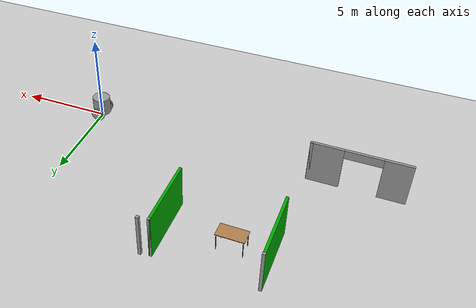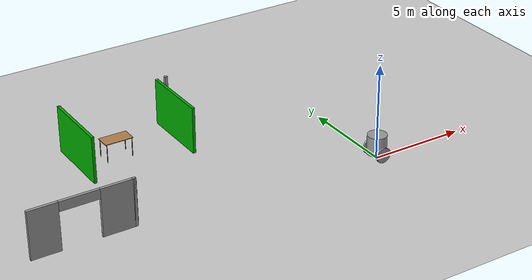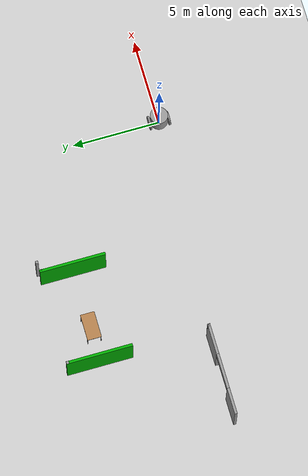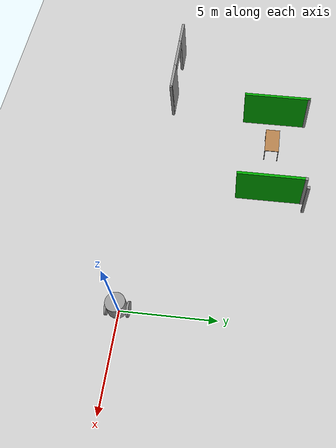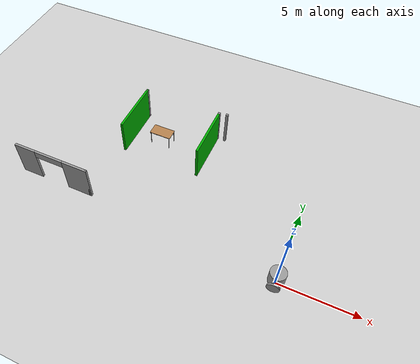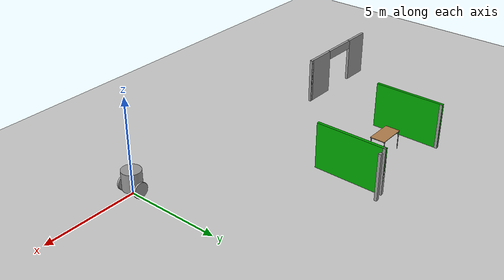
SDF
<sdf version="1.6">
 <world name="default">
  <model name="ground_plane">
   <static>1</static>
   <link name="link">
    <collision name="collision">
     <geometry><plane><normal>0 0 1</normal><size>100 100</size></plane></geometry>
     <surface><friction><ode><mu>100</mu><mu2>50</mu2></ode></friction></surface>
    </collision>
    <visual name="visual">
     <cast_shadows>0</cast_shadows>
     <geometry><plane><normal>0 0 1</normal><size>100 100</size></plane></geometry>
     <material>
      <script><uri>file://media/materials/scripts/gazebo.material</uri><name>Gazebo/Grey</name></script>
     </material>
    </visual>
   </link>
  </model>
  <model name="robot">
   <link name="link_1">
    <inertial>
     <mass>1</mass>
     <inertia><ixx>0.145833</ixx><ixy>0</ixy><ixz>0</ixz><iyy>0.145833</iyy><iyz>0</iyz><izz>0.125</izz></inertia>
    </inertial>
    <visual name="visual">
     <pose>0 0 0.4 0 -0 0</pose>
     <geometry><cylinder><radius>0.5</radius><length>1</length></cylinder></geometry>
     <material>
      <lighting>1</lighting>
      <script><uri>file://media/materials/scripts/gazebo.material</uri><name>Gazebo/Grey</name></script>
      <shader type="pixel"><normal_map>__default__</normal_map></shader>
      <ambient>0.3 0.3 0.3 1</ambient>
      <diffuse>0.7 0.7 0.7 1</diffuse>
      <specular>0.01 0.01 0.01 1</specular>
      <emissive>0 0 0 1</emissive>
     </material>
    </visual>
    <collision name="collision">
     <pose>0 0 0.4 0 -0 0</pose>
     <geometry><cylinder><radius>0.5</radius><length>1</length></cylinder></geometry>
     <surface>
      <friction>
       <ode><mu>1</mu><mu2>1</mu2><fdir1>0 0 0</fdir1><slip1>0</slip1><slip2>0</slip2></ode>
       <torsional>
        <coefficient>1</coefficient>
        <patch_radius>0</patch_radius>
        <surface_radius>0</surface_radius>
        <use_patch_radius>1</use_patch_radius>
        <ode><slip>0</slip></ode>
       </torsional>
      </friction>
      <bounce><restitution_coefficient>0</restitution_coefficient><threshold>1e+06</threshold></bounce>
      <contact>
       <collide_without_contact>0</collide_without_contact>
       <collide_without_contact_bitmask>1</collide_without_contact_bitmask>
       <collide_bitmask>1</collide_bitmask>
       <ode>
        <soft_cfm>0</soft_cfm>
        <soft_erp>0.2</soft_erp>
        <kp>1e+13</kp>
        <kd>1</kd>
        <max_vel>0.01</max_vel>
        <min_depth>0</min_depth>
       </ode>
       <bullet>
        <split_impulse>1</split_impulse>
        <split_impulse_penetration_threshold>-0.01</split_impulse_penetration_threshold>
        <soft_cfm>0</soft_cfm>
        <soft_erp>0.2</soft_erp>
        <kp>1e+13</kp>
        <kd>1</kd>
       </bullet>
      </contact>
     </surface>
    </collision>
   </link>
   <link name="link_1_clone">
    <inertial>
     <mass>1</mass>
     <inertia><ixx>0.145833</ixx><ixy>0</ixy><ixz>0</ixz><iyy>0.145833</iyy><iyz>0</iyz><izz>0.125</izz></inertia>
    </inertial>
    <pose>0 -0.550039 0 1.5707 -0 0</pose>
    <visual name="visual">
     <geometry><cylinder><radius>0.4</radius><length>0.1</length></cylinder></geometry>
     <material>
      <lighting>1</lighting>
      <script><uri>file://media/materials/scripts/gazebo.material</uri><name>Gazebo/Grey</name></script>
      <shader type="pixel"><normal_map>__default__</normal_map></shader>
      <ambient>0.3 0.3 0.3 1</ambient>
      <diffuse>0.7 0.7 0.7 1</diffuse>
      <specular>0.01 0.01 0.01 1</specular>
      <emissive>0 0 0 1</emissive>
     </material>
    </visual>
    <collision name="collision">
     <geometry><cylinder><radius>0.4</radius><length>0.1</length></cylinder></geometry>
     <surface>
      <friction>
       <ode><mu>1</mu><mu2>1</mu2><fdir1>0 0 0</fdir1><slip1>0</slip1><slip2>0</slip2></ode>
       <torsional>
        <coefficient>1</coefficient>
        <patch_radius>0</patch_radius>
        <surface_radius>0</surface_radius>
        <use_patch_radius>1</use_patch_radius>
        <ode><slip>0</slip></ode>
       </torsional>
      </friction>
      <bounce><restitution_coefficient>0</restitution_coefficient><threshold>1e+06</threshold></bounce>
      <contact>
       <collide_without_contact>0</collide_without_contact>
       <collide_without_contact_bitmask>1</collide_without_contact_bitmask>
       <collide_bitmask>1</collide_bitmask>
       <ode>
        <soft_cfm>0</soft_cfm>
        <soft_erp>0.2</soft_erp>
        <kp>1e+13</kp>
        <kd>1</kd>
        <max_vel>0.01</max_vel>
        <min_depth>0</min_depth>
       </ode>
       <bullet>
        <split_impulse>1</split_impulse>
        <split_impulse_penetration_threshold>-0.01</split_impulse_penetration_threshold>
        <soft_cfm>0</soft_cfm>
        <soft_erp>0.2</soft_erp>
        <kp>1e+13</kp>
        <kd>1</kd>
       </bullet>
      </contact>
     </surface>
    </collision>
   </link>
   <link name="link_1_clone_clone">
    <inertial>
     <mass>1</mass>
     <inertia><ixx>0.145833</ixx><ixy>0</ixy><ixz>0</ixz><iyy>0.145833</iyy><iyz>0</iyz><izz>0.125</izz></inertia>
    </inertial>
    <pose>0 0.550039 0 1.5707 -0 0</pose>
    <visual name="visual">
     <geometry><cylinder><radius>0.4</radius><length>0.1</length></cylinder></geometry>
     <material>
      <lighting>1</lighting>
      <script><uri>file://media/materials/scripts/gazebo.material</uri><name>Gazebo/Grey</name></script>
      <shader type="pixel"><normal_map>__default__</normal_map></shader>
      <ambient>0.3 0.3 0.3 1</ambient>
      <diffuse>0.7 0.7 0.7 1</diffuse>
      <specular>0.01 0.01 0.01 1</specular>
      <emissive>0 0 0 1</emissive>
     </material>
    </visual>
    <collision name="collision">
     <geometry><cylinder><radius>0.4</radius><length>0.1</length></cylinder></geometry>
     <surface>
      <friction>
       <ode><mu>1</mu><mu2>1</mu2><fdir1>0 0 0</fdir1><slip1>0</slip1><slip2>0</slip2></ode>
       <torsional>
        <coefficient>1</coefficient>
        <patch_radius>0</patch_radius>
        <surface_radius>0</surface_radius>
        <use_patch_radius>1</use_patch_radius>
        <ode><slip>0</slip></ode>
       </torsional>
      </friction>
      <bounce><restitution_coefficient>0</restitution_coefficient><threshold>1e+06</threshold></bounce>
      <contact>
       <collide_without_contact>0</collide_without_contact>
       <collide_without_contact_bitmask>1</collide_without_contact_bitmask>
       <collide_bitmask>1</collide_bitmask>
       <ode>
        <soft_cfm>0</soft_cfm>
        <soft_erp>0.2</soft_erp>
        <kp>1e+13</kp>
        <kd>1</kd>
        <max_vel>0.01</max_vel>
        <min_depth>0</min_depth>
       </ode>
       <bullet>
        <split_impulse>1</split_impulse>
        <split_impulse_penetration_threshold>-0.01</split_impulse_penetration_threshold>
        <soft_cfm>0</soft_cfm>
        <soft_erp>0.2</soft_erp>
        <kp>1e+13</kp>
        <kd>1</kd>
       </bullet>
      </contact>
     </surface>
    </collision>
   </link>
   <joint name="link_1_JOINT_2" type="revolute">
    <parent>link_1</parent>
    <child>link_1_clone</child>
    <axis>
     <xyz>0 0 1</xyz>
     <use_parent_model_frame>0</use_parent_model_frame>
     <limit>
      <lower>-1.79769e+308</lower>
      <upper>1.79769e+308</upper>
      <effort>-1</effort>
      <velocity>-1</velocity>
     </limit>
     <dynamics>
      <spring_reference>0</spring_reference>
      <spring_stiffness>0</spring_stiffness>
      <damping>0</damping>
     </dynamics>
    </axis>
    <physics>
     <ode><limit><cfm>0</cfm><erp>0.2</erp></limit><suspension><cfm>0</cfm><erp>0.2</erp></suspension></ode>
    </physics>
   </joint>
   <joint name="link_1_JOINT_4" type="revolute">
    <parent>link_1</parent>
    <child>link_1_clone_clone</child>
    <axis>
     <xyz>0 0 1</xyz>
     <use_parent_model_frame>0</use_parent_model_frame>
     <limit>
      <lower>-1.79769e+308</lower>
      <upper>1.79769e+308</upper>
      <effort>-1</effort>
      <velocity>-1</velocity>
     </limit>
     <dynamics>
      <spring_reference>0</spring_reference>
      <spring_stiffness>0</spring_stiffness>
      <damping>0</damping>
     </dynamics>
    </axis>
    <physics>
     <ode><limit><cfm>0</cfm><erp>0.2</erp></limit><suspension><cfm>0</cfm><erp>0.2</erp></suspension></ode>
    </physics>
   </joint>
   <static>0</static>
   <pose>0 -0.000492 0.400005 0 -0 0</pose>
  </model>
  <model name="FloorPlan">
   <pose>0.30947 -3.19534 0 0 -0 0</pose>
   <link name="Wall_70">
    <collision name="Wall_70_Collision">
     <geometry><box><size>0.16 0.15 2.5</size></box></geometry>
     <pose>0 0 1.25 0 -0 0</pose>
    </collision>
    <visual name="Wall_70_Visual">
     <pose>0 0 1.25 0 -0 0</pose>
     <geometry><box><size>0.16 0.15 2.5</size></box></geometry>
     <material>
      <script><uri>file://media/materials/scripts/gazebo.material</uri><name>Gazebo/Grey</name></script>
      <ambient>1 1 1 1</ambient>
     </material>
     <meta><layer>0</layer></meta>
    </visual>
    <pose>-7.03882 12.1498 0 0 -0 0</pose>
   </link>
   <link name="Wall_85">
    <pose>-15.6324 4.0709 0 0 -0 0</pose>
    <visual name="Wall_85_Visual_0">
     <pose>-1.87867 0 1.25 0 -0 0</pose>
     <geometry><box><size>1.49266 0.15 2.5</size></box></geometry>
     <material>
      <script><uri>file://media/materials/scripts/gazebo.material</uri><name>Gazebo/Grey</name></script>
      <ambient>1 1 1 1</ambient>
     </material>
     <meta><layer>0</layer></meta>
    </visual>
    <collision name="Wall_85_Collision_0">
     <geometry><box><size>1.49266 0.15 2.5</size></box></geometry>
     <pose>-1.87867 0 1.25 0 -0 0</pose>
    </collision>
    <visual name="Wall_85_Visual_1">
     <pose>1.74633 0 1.25 0 -0 0</pose>
     <geometry><box><size>1.75734 0.15 2.5</size></box></geometry>
     <material>
      <script><uri>file://media/materials/scripts/gazebo.material</uri><name>Gazebo/Grey</name></script>
      <ambient>1 1 1 1</ambient>
     </material>
     <meta><layer>0</layer></meta>
    </visual>
    <collision name="Wall_85_Collision_1">
     <geometry><box><size>1.75734 0.15 2.5</size></box></geometry>
     <pose>1.74633 0 1.25 0 -0 0</pose>
    </collision>
    <visual name="Wall_85_Visual_2">
     <pose>-0.132345 0 2.25 0 -0 0</pose>
     <geometry><box><size>2 0.15 0.5</size></box></geometry>
     <material>
      <script><uri>file://media/materials/scripts/gazebo.material</uri><name>Gazebo/Grey</name></script>
      <ambient>1 1 1 1</ambient>
     </material>
     <meta><layer>0</layer></meta>
    </visual>
    <collision name="Wall_85_Collision_2">
     <geometry><box><size>2 0.15 0.5</size></box></geometry>
     <pose>-0.132345 0 2.25 0 -0 0</pose>
    </collision>
   </link>
   <link name="Wall_86">
    <collision name="Wall_86_Collision">
     <geometry><box><size>0.16 0.15 2.5</size></box></geometry>
     <pose>0 0 1.25 0 -0 0</pose>
    </collision>
    <visual name="Wall_86_Visual">
     <pose>0 0 1.25 0 -0 0</pose>
     <geometry><box><size>0.16 0.15 2.5</size></box></geometry>
     <material>
      <script><uri>file://media/materials/scripts/gazebo.material</uri><name>Gazebo/Grey</name></script>
      <ambient>1 1 1 1</ambient>
     </material>
     <meta><layer>0</layer></meta>
    </visual>
    <pose>-13.0774 4.0709 0 0 -0 0</pose>
   </link>
   <link name="Wall_90">
    <collision name="Wall_90_Collision">
     <geometry><box><size>3.75 0.15 2.5</size></box></geometry>
     <pose>0 0 1.25 0 -0 0</pose>
    </collision>
    <visual name="Wall_90_Visual">
     <pose>0 0 1.25 0 -0 0</pose>
     <geometry><box><size>3.75 0.15 2.5</size></box></geometry>
     <material>
      <script><uri>file://media/materials/scripts/gazebo.material</uri><name>Gazebo/Grey</name></script>
      <ambient>0 0.666667 0 1</ambient>
     </material>
     <meta><layer>0</layer></meta>
    </visual>
    <pose>-12.9826 10.2581 0 0 -0 1.5708</pose>
   </link>
   <link name="Wall_91">
    <collision name="Wall_91_Collision">
     <geometry><box><size>0.16 0.15 2.5</size></box></geometry>
     <pose>0 0 1.25 0 -0 0</pose>
    </collision>
    <visual name="Wall_91_Visual">
     <pose>0 0 1.25 0 -0 0</pose>
     <geometry><box><size>0.16 0.15 2.5</size></box></geometry>
     <material>
      <script><uri>file://media/materials/scripts/gazebo.material</uri><name>Gazebo/Grey</name></script>
      <ambient>1 1 1 1</ambient>
     </material>
     <meta><layer>0</layer></meta>
    </visual>
    <pose>-12.9776 12.0581 0 0 -0 0</pose>
   </link>
   <link name="Wall_98">
    <collision name="Wall_98_Collision">
     <geometry><box><size>3.75 0.15 2.5</size></box></geometry>
     <pose>0 0 1.25 0 -0 0</pose>
    </collision>
    <visual name="Wall_98_Visual">
     <pose>0 0 1.25 0 -0 0</pose>
     <geometry><box><size>3.75 0.15 2.5</size></box></geometry>
     <material>
      <script><uri>file://media/materials/scripts/gazebo.material</uri><name>Gazebo/Grey</name></script>
      <ambient>0 0.666667 0 1</ambient>
     </material>
     <meta><layer>0</layer></meta>
    </visual>
    <pose>-7.57885 10.2581 0 0 -0 1.5708</pose>
   </link>
   <link name="Wall_99">
    <collision name="Wall_99_Collision">
     <geometry><box><size>0.16 0.15 2.5</size></box></geometry>
     <pose>0 0 1.25 0 -0 0</pose>
    </collision>
    <visual name="Wall_99_Visual">
     <pose>0 0 1.25 0 -0 0</pose>
     <geometry><box><size>0.16 0.15 2.5</size></box></geometry>
     <material>
      <script><uri>file://media/materials/scripts/gazebo.material</uri><name>Gazebo/Grey</name></script>
      <ambient>1 1 1 1</ambient>
     </material>
     <meta><layer>0</layer></meta>
    </visual>
    <pose>-7.57385 12.0581 0 0 -0 0</pose>
   </link>
   <static>1</static>
  </model>
  <model name="table_5">
   <static>1</static>
   <link name="link">
    <collision name="surface">
     <pose>0 0 1 0 -0 0</pose>
     <geometry><box><size>1.5 0.8 0.03</size></box></geometry>
     <surface><friction><ode><mu>0.6</mu><mu2>0.6</mu2></ode></friction></surface>
    </collision>
    <visual name="visual1">
     <pose>0 0 1 0 -0 0</pose>
     <geometry><box><size>1.5 0.8 0.03</size></box></geometry>
     <material>
      <script><uri>file://media/materials/scripts/gazebo.material</uri><name>Gazebo/Wood</name></script>
     </material>
    </visual>
    <collision name="front_left_leg">
     <pose>0.68 0.38 0.5 0 -0 0</pose>
     <geometry><cylinder><radius>0.02</radius><length>1</length></cylinder></geometry>
    </collision>
    <visual name="front_left_leg">
     <pose>0.68 0.38 0.5 0 -0 0</pose>
     <geometry><cylinder><radius>0.02</radius><length>1</length></cylinder></geometry>
     <material>
      <script><uri>file://media/materials/scripts/gazebo.material</uri><name>Gazebo/Grey</name></script>
     </material>
    </visual>
    <collision name="front_right_leg">
     <pose>0.68 -0.38 0.5 0 -0 0</pose>
     <geometry><cylinder><radius>0.02</radius><length>1</length></cylinder></geometry>
    </collision>
    <visual name="front_right_leg">
     <pose>0.68 -0.38 0.5 0 -0 0</pose>
     <geometry><cylinder><radius>0.02</radius><length>1</length></cylinder></geometry>
     <material>
      <script><uri>file://media/materials/scripts/gazebo.material</uri><name>Gazebo/Grey</name></script>
     </material>
    </visual>
    <collision name="back_right_leg">
     <pose>-0.68 -0.38 0.5 0 -0 0</pose>
     <geometry><cylinder><radius>0.02</radius><length>1</length></cylinder></geometry>
    </collision>
    <visual name="back_right_leg">
     <pose>-0.68 -0.38 0.5 0 -0 0</pose>
     <geometry><cylinder><radius>0.02</radius><length>1</length></cylinder></geometry>
     <material>
      <script><uri>file://media/materials/scripts/gazebo.material</uri><name>Gazebo/Grey</name></script>
     </material>
    </visual>
    <collision name="back_left_leg">
     <pose>-0.68 0.38 0.5 0 -0 0</pose>
     <geometry><cylinder><radius>0.02</radius><length>1</length></cylinder></geometry>
    </collision>
    <visual name="back_left_leg">
     <pose>-0.68 0.38 0.5 0 -0 0</pose>
     <geometry><cylinder><radius>0.02</radius><length>1</length></cylinder></geometry>
     <material>
      <script><uri>file://media/materials/scripts/gazebo.material</uri><name>Gazebo/Grey</name></script>
     </material>
    </visual>
   </link>
   <pose>-10.6382 6.99148 0 0 -0 0</pose>
  </model>
 </world>
</sdf>
